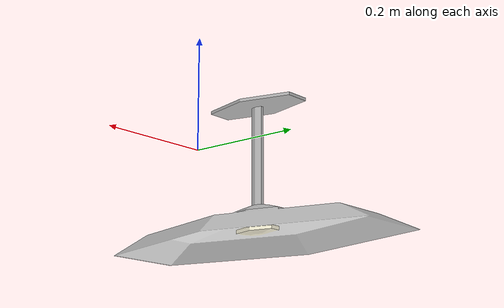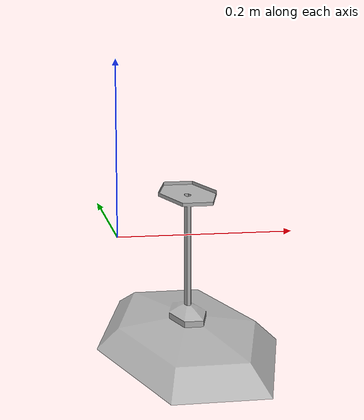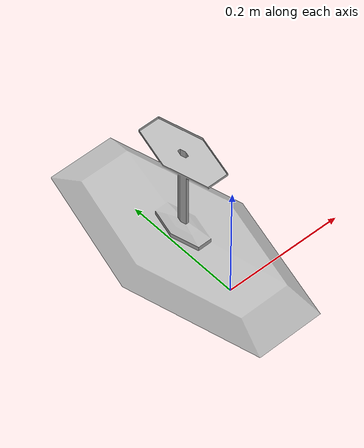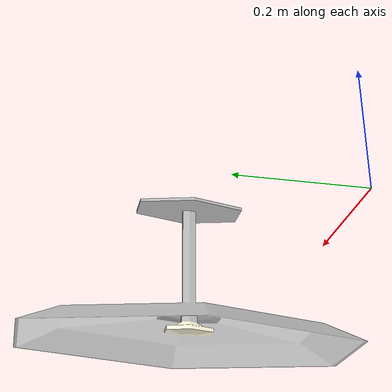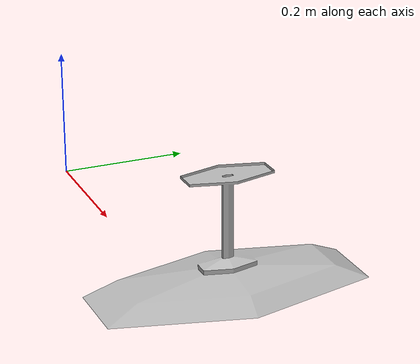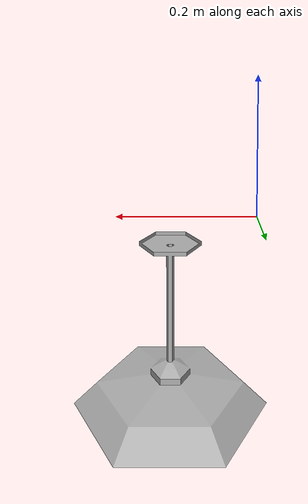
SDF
<?xml version="1.0" ?>
<sdf version='1.5'>
<model name='light_bulb'>
<static>true</static>
<link name="link">
   <pose frame=''>0 0 0 0 0 0</pose>
  <visual name='light_bulbV'>
    <cast_shadows>false</cast_shadows>
    <geometry>
      <mesh>
        <scale>1.0 1.0 1.0</scale>
        <uri>model://light_bulb/model.dae</uri>
      </mesh>
    </geometry>
  </visual>
</link>
</model>
</sdf>
